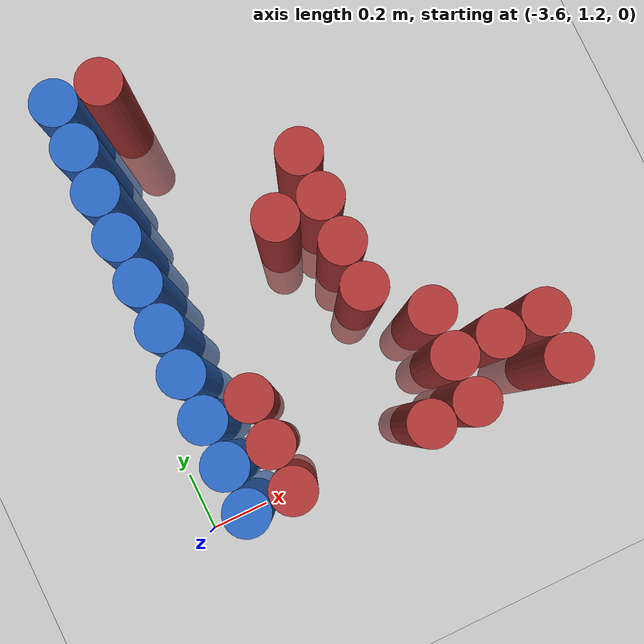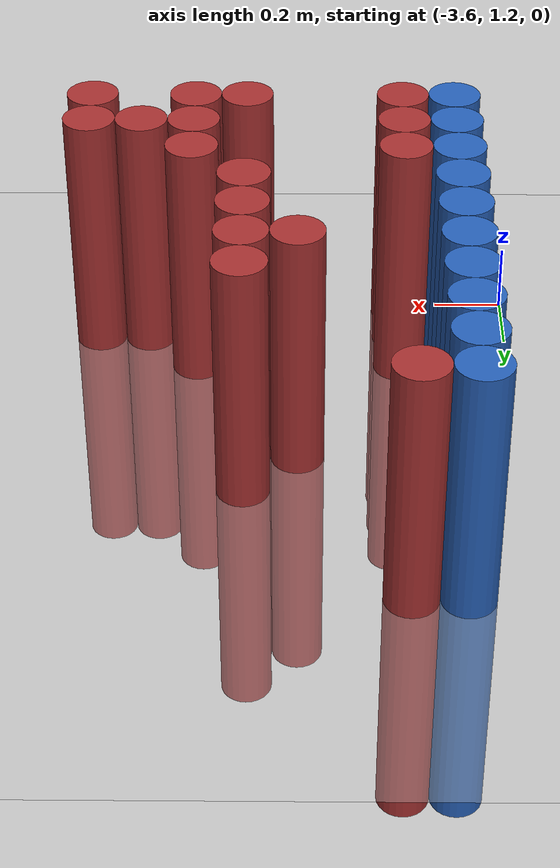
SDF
<sdf version="1.6">
 <world name="default">
  <model name="ground_plane">
   <static>1</static>
   <link name="link">
    <collision name="collision">
     <geometry><plane><normal>0 0 1</normal><size>100 100</size></plane></geometry>
     <surface><friction><ode><mu>100</mu><mu2>50</mu2></ode></friction></surface>
    </collision>
    <visual name="visual">
     <cast_shadows>0</cast_shadows>
     <geometry><plane><normal>0 0 1</normal><size>100 100</size></plane></geometry>
     <material>
      <script><uri>file://media/materials/scripts/gazebo.material</uri><name>Gazebo/Grey</name></script>
     </material>
    </visual>
   </link>
  </model>
  <model name="unit_cylinder_131">
   <static>1</static>
   <pose>-3.425000 1.225000 0.000000 0.000000 0.000000 0.000000</pose>
   <link name="link">
    <inertial>
     <mass>1</mass>
     <inertia><ixx>0.145833</ixx><ixy>0</ixy><ixz>0</ixz><iyy>0.145833</iyy><iyz>0</iyz><izz>0.125</izz></inertia>
    </inertial>
    <collision name="collision">
     <geometry><cylinder><radius>0.075000</radius><length>1.5</length></cylinder></geometry>
    </collision>
    <visual name="visual">
     <geometry><cylinder><radius>0.075000</radius><length>1.5</length></cylinder></geometry>
     <material>
      <ambient>0.152000 0.379000 0.720000 1</ambient>
      <diffuse>0.152000 0.379000 0.720000 1</diffuse>
     </material>
     <material>
      <script><name>Gazebo/Grey</name><uri>file://media/materials/scripts/gazebo.material</uri></script>
     </material>
    </visual>
   </link>
  </model>
  <model name="unit_cylinder_133">
   <static>1</static>
   <pose>-3.425000 1.375000 0.000000 0.000000 0.000000 0.000000</pose>
   <link name="link">
    <inertial>
     <mass>1</mass>
     <inertia><ixx>0.145833</ixx><ixy>0</ixy><ixz>0</ixz><iyy>0.145833</iyy><iyz>0</iyz><izz>0.125</izz></inertia>
    </inertial>
    <collision name="collision">
     <geometry><cylinder><radius>0.075000</radius><length>1.5</length></cylinder></geometry>
    </collision>
    <visual name="visual">
     <geometry><cylinder><radius>0.075000</radius><length>1.5</length></cylinder></geometry>
     <material>
      <ambient>0.152000 0.379000 0.720000 1</ambient>
      <diffuse>0.152000 0.379000 0.720000 1</diffuse>
     </material>
     <material>
      <script><name>Gazebo/Grey</name><uri>file://media/materials/scripts/gazebo.material</uri></script>
     </material>
    </visual>
   </link>
  </model>
  <model name="unit_cylinder_135">
   <static>1</static>
   <pose>-3.425000 1.525000 0.000000 0.000000 0.000000 0.000000</pose>
   <link name="link">
    <inertial>
     <mass>1</mass>
     <inertia><ixx>0.145833</ixx><ixy>0</ixy><ixz>0</ixz><iyy>0.145833</iyy><iyz>0</iyz><izz>0.125</izz></inertia>
    </inertial>
    <collision name="collision">
     <geometry><cylinder><radius>0.075000</radius><length>1.5</length></cylinder></geometry>
    </collision>
    <visual name="visual">
     <geometry><cylinder><radius>0.075000</radius><length>1.5</length></cylinder></geometry>
     <material>
      <ambient>0.152000 0.379000 0.720000 1</ambient>
      <diffuse>0.152000 0.379000 0.720000 1</diffuse>
     </material>
     <material>
      <script><name>Gazebo/Grey</name><uri>file://media/materials/scripts/gazebo.material</uri></script>
     </material>
    </visual>
   </link>
  </model>
  <model name="unit_cylinder_137">
   <static>1</static>
   <pose>-3.425000 1.675000 0.000000 0.000000 0.000000 0.000000</pose>
   <link name="link">
    <inertial>
     <mass>1</mass>
     <inertia><ixx>0.145833</ixx><ixy>0</ixy><ixz>0</ixz><iyy>0.145833</iyy><iyz>0</iyz><izz>0.125</izz></inertia>
    </inertial>
    <collision name="collision">
     <geometry><cylinder><radius>0.075000</radius><length>1.5</length></cylinder></geometry>
    </collision>
    <visual name="visual">
     <geometry><cylinder><radius>0.075000</radius><length>1.5</length></cylinder></geometry>
     <material>
      <ambient>0.152000 0.379000 0.720000 1</ambient>
      <diffuse>0.152000 0.379000 0.720000 1</diffuse>
     </material>
     <material>
      <script><name>Gazebo/Grey</name><uri>file://media/materials/scripts/gazebo.material</uri></script>
     </material>
    </visual>
   </link>
  </model>
  <model name="unit_cylinder_139">
   <static>1</static>
   <pose>-3.425000 1.825000 0.000000 0.000000 0.000000 0.000000</pose>
   <link name="link">
    <inertial>
     <mass>1</mass>
     <inertia><ixx>0.145833</ixx><ixy>0</ixy><ixz>0</ixz><iyy>0.145833</iyy><iyz>0</iyz><izz>0.125</izz></inertia>
    </inertial>
    <collision name="collision">
     <geometry><cylinder><radius>0.075000</radius><length>1.5</length></cylinder></geometry>
    </collision>
    <visual name="visual">
     <geometry><cylinder><radius>0.075000</radius><length>1.5</length></cylinder></geometry>
     <material>
      <ambient>0.152000 0.379000 0.720000 1</ambient>
      <diffuse>0.152000 0.379000 0.720000 1</diffuse>
     </material>
     <material>
      <script><name>Gazebo/Grey</name><uri>file://media/materials/scripts/gazebo.material</uri></script>
     </material>
    </visual>
   </link>
  </model>
  <model name="unit_cylinder_141">
   <static>1</static>
   <pose>-3.425000 1.975000 0.000000 0.000000 0.000000 0.000000</pose>
   <link name="link">
    <inertial>
     <mass>1</mass>
     <inertia><ixx>0.145833</ixx><ixy>0</ixy><ixz>0</ixz><iyy>0.145833</iyy><iyz>0</iyz><izz>0.125</izz></inertia>
    </inertial>
    <collision name="collision">
     <geometry><cylinder><radius>0.075000</radius><length>1.5</length></cylinder></geometry>
    </collision>
    <visual name="visual">
     <geometry><cylinder><radius>0.075000</radius><length>1.5</length></cylinder></geometry>
     <material>
      <ambient>0.152000 0.379000 0.720000 1</ambient>
      <diffuse>0.152000 0.379000 0.720000 1</diffuse>
     </material>
     <material>
      <script><name>Gazebo/Grey</name><uri>file://media/materials/scripts/gazebo.material</uri></script>
     </material>
    </visual>
   </link>
  </model>
  <model name="unit_cylinder_143">
   <static>1</static>
   <pose>-3.425000 2.125000 0.000000 0.000000 0.000000 0.000000</pose>
   <link name="link">
    <inertial>
     <mass>1</mass>
     <inertia><ixx>0.145833</ixx><ixy>0</ixy><ixz>0</ixz><iyy>0.145833</iyy><iyz>0</iyz><izz>0.125</izz></inertia>
    </inertial>
    <collision name="collision">
     <geometry><cylinder><radius>0.075000</radius><length>1.5</length></cylinder></geometry>
    </collision>
    <visual name="visual">
     <geometry><cylinder><radius>0.075000</radius><length>1.5</length></cylinder></geometry>
     <material>
      <ambient>0.152000 0.379000 0.720000 1</ambient>
      <diffuse>0.152000 0.379000 0.720000 1</diffuse>
     </material>
     <material>
      <script><name>Gazebo/Grey</name><uri>file://media/materials/scripts/gazebo.material</uri></script>
     </material>
    </visual>
   </link>
  </model>
  <model name="unit_cylinder_145">
   <static>1</static>
   <pose>-3.425000 2.275000 0.000000 0.000000 0.000000 0.000000</pose>
   <link name="link">
    <inertial>
     <mass>1</mass>
     <inertia><ixx>0.145833</ixx><ixy>0</ixy><ixz>0</ixz><iyy>0.145833</iyy><iyz>0</iyz><izz>0.125</izz></inertia>
    </inertial>
    <collision name="collision">
     <geometry><cylinder><radius>0.075000</radius><length>1.5</length></cylinder></geometry>
    </collision>
    <visual name="visual">
     <geometry><cylinder><radius>0.075000</radius><length>1.5</length></cylinder></geometry>
     <material>
      <ambient>0.152000 0.379000 0.720000 1</ambient>
      <diffuse>0.152000 0.379000 0.720000 1</diffuse>
     </material>
     <material>
      <script><name>Gazebo/Grey</name><uri>file://media/materials/scripts/gazebo.material</uri></script>
     </material>
    </visual>
   </link>
  </model>
  <model name="unit_cylinder_147">
   <static>1</static>
   <pose>-3.425000 2.425000 0.000000 0.000000 0.000000 0.000000</pose>
   <link name="link">
    <inertial>
     <mass>1</mass>
     <inertia><ixx>0.145833</ixx><ixy>0</ixy><ixz>0</ixz><iyy>0.145833</iyy><iyz>0</iyz><izz>0.125</izz></inertia>
    </inertial>
    <collision name="collision">
     <geometry><cylinder><radius>0.075000</radius><length>1.5</length></cylinder></geometry>
    </collision>
    <visual name="visual">
     <geometry><cylinder><radius>0.075000</radius><length>1.5</length></cylinder></geometry>
     <material>
      <ambient>0.152000 0.379000 0.720000 1</ambient>
      <diffuse>0.152000 0.379000 0.720000 1</diffuse>
     </material>
     <material>
      <script><name>Gazebo/Grey</name><uri>file://media/materials/scripts/gazebo.material</uri></script>
     </material>
    </visual>
   </link>
  </model>
  <model name="unit_cylinder_149">
   <static>1</static>
   <pose>-3.425000 2.575000 0.000000 0.000000 0.000000 0.000000</pose>
   <link name="link">
    <inertial>
     <mass>1</mass>
     <inertia><ixx>0.145833</ixx><ixy>0</ixy><ixz>0</ixz><iyy>0.145833</iyy><iyz>0</iyz><izz>0.125</izz></inertia>
    </inertial>
    <collision name="collision">
     <geometry><cylinder><radius>0.075000</radius><length>1.5</length></cylinder></geometry>
    </collision>
    <visual name="visual">
     <geometry><cylinder><radius>0.075000</radius><length>1.5</length></cylinder></geometry>
     <material>
      <ambient>0.152000 0.379000 0.720000 1</ambient>
      <diffuse>0.152000 0.379000 0.720000 1</diffuse>
     </material>
     <material>
      <script><name>Gazebo/Grey</name><uri>file://media/materials/scripts/gazebo.material</uri></script>
     </material>
    </visual>
   </link>
  </model>
  <model name="unit_cylinder_229">
   <static>1</static>
   <pose>-3.425000 1.225000 0.000000 0.000000 0.000000 0.000000</pose>
   <link name="link">
    <inertial>
     <mass>1</mass>
     <inertia><ixx>0.145833</ixx><ixy>0</ixy><ixz>0</ixz><iyy>0.145833</iyy><iyz>0</iyz><izz>0.125</izz></inertia>
    </inertial>
    <collision name="collision">
     <geometry><cylinder><radius>0.075000</radius><length>1.5</length></cylinder></geometry>
    </collision>
    <visual name="visual">
     <geometry><cylinder><radius>0.075000</radius><length>1.5</length></cylinder></geometry>
     <material>
      <ambient>0.152000 0.379000 0.720000 1</ambient>
      <diffuse>0.152000 0.379000 0.720000 1</diffuse>
     </material>
     <material>
      <script><name>Gazebo/Grey</name><uri>file://media/materials/scripts/gazebo.material</uri></script>
     </material>
    </visual>
   </link>
  </model>
  <model name="unit_cylinder_230">
   <static>1</static>
   <pose>-3.425000 1.375000 0.000000 0.000000 0.000000 0.000000</pose>
   <link name="link">
    <inertial>
     <mass>1</mass>
     <inertia><ixx>0.145833</ixx><ixy>0</ixy><ixz>0</ixz><iyy>0.145833</iyy><iyz>0</iyz><izz>0.125</izz></inertia>
    </inertial>
    <collision name="collision">
     <geometry><cylinder><radius>0.075000</radius><length>1.5</length></cylinder></geometry>
    </collision>
    <visual name="visual">
     <geometry><cylinder><radius>0.075000</radius><length>1.5</length></cylinder></geometry>
     <material>
      <ambient>0.152000 0.379000 0.720000 1</ambient>
      <diffuse>0.152000 0.379000 0.720000 1</diffuse>
     </material>
     <material>
      <script><name>Gazebo/Grey</name><uri>file://media/materials/scripts/gazebo.material</uri></script>
     </material>
    </visual>
   </link>
  </model>
  <model name="unit_cylinder_231">
   <static>1</static>
   <pose>-3.425000 1.525000 0.000000 0.000000 0.000000 0.000000</pose>
   <link name="link">
    <inertial>
     <mass>1</mass>
     <inertia><ixx>0.145833</ixx><ixy>0</ixy><ixz>0</ixz><iyy>0.145833</iyy><iyz>0</iyz><izz>0.125</izz></inertia>
    </inertial>
    <collision name="collision">
     <geometry><cylinder><radius>0.075000</radius><length>1.5</length></cylinder></geometry>
    </collision>
    <visual name="visual">
     <geometry><cylinder><radius>0.075000</radius><length>1.5</length></cylinder></geometry>
     <material>
      <ambient>0.152000 0.379000 0.720000 1</ambient>
      <diffuse>0.152000 0.379000 0.720000 1</diffuse>
     </material>
     <material>
      <script><name>Gazebo/Grey</name><uri>file://media/materials/scripts/gazebo.material</uri></script>
     </material>
    </visual>
   </link>
  </model>
  <model name="unit_cylinder_232">
   <static>1</static>
   <pose>-3.425000 1.675000 0.000000 0.000000 0.000000 0.000000</pose>
   <link name="link">
    <inertial>
     <mass>1</mass>
     <inertia><ixx>0.145833</ixx><ixy>0</ixy><ixz>0</ixz><iyy>0.145833</iyy><iyz>0</iyz><izz>0.125</izz></inertia>
    </inertial>
    <collision name="collision">
     <geometry><cylinder><radius>0.075000</radius><length>1.5</length></cylinder></geometry>
    </collision>
    <visual name="visual">
     <geometry><cylinder><radius>0.075000</radius><length>1.5</length></cylinder></geometry>
     <material>
      <ambient>0.152000 0.379000 0.720000 1</ambient>
      <diffuse>0.152000 0.379000 0.720000 1</diffuse>
     </material>
     <material>
      <script><name>Gazebo/Grey</name><uri>file://media/materials/scripts/gazebo.material</uri></script>
     </material>
    </visual>
   </link>
  </model>
  <model name="unit_cylinder_233">
   <static>1</static>
   <pose>-3.425000 1.825000 0.000000 0.000000 0.000000 0.000000</pose>
   <link name="link">
    <inertial>
     <mass>1</mass>
     <inertia><ixx>0.145833</ixx><ixy>0</ixy><ixz>0</ixz><iyy>0.145833</iyy><iyz>0</iyz><izz>0.125</izz></inertia>
    </inertial>
    <collision name="collision">
     <geometry><cylinder><radius>0.075000</radius><length>1.5</length></cylinder></geometry>
    </collision>
    <visual name="visual">
     <geometry><cylinder><radius>0.075000</radius><length>1.5</length></cylinder></geometry>
     <material>
      <ambient>0.152000 0.379000 0.720000 1</ambient>
      <diffuse>0.152000 0.379000 0.720000 1</diffuse>
     </material>
     <material>
      <script><name>Gazebo/Grey</name><uri>file://media/materials/scripts/gazebo.material</uri></script>
     </material>
    </visual>
   </link>
  </model>
  <model name="unit_cylinder_234">
   <static>1</static>
   <pose>-3.425000 1.975000 0.000000 0.000000 0.000000 0.000000</pose>
   <link name="link">
    <inertial>
     <mass>1</mass>
     <inertia><ixx>0.145833</ixx><ixy>0</ixy><ixz>0</ixz><iyy>0.145833</iyy><iyz>0</iyz><izz>0.125</izz></inertia>
    </inertial>
    <collision name="collision">
     <geometry><cylinder><radius>0.075000</radius><length>1.5</length></cylinder></geometry>
    </collision>
    <visual name="visual">
     <geometry><cylinder><radius>0.075000</radius><length>1.5</length></cylinder></geometry>
     <material>
      <ambient>0.152000 0.379000 0.720000 1</ambient>
      <diffuse>0.152000 0.379000 0.720000 1</diffuse>
     </material>
     <material>
      <script><name>Gazebo/Grey</name><uri>file://media/materials/scripts/gazebo.material</uri></script>
     </material>
    </visual>
   </link>
  </model>
  <model name="unit_cylinder_235">
   <static>1</static>
   <pose>-3.425000 2.125000 0.000000 0.000000 0.000000 0.000000</pose>
   <link name="link">
    <inertial>
     <mass>1</mass>
     <inertia><ixx>0.145833</ixx><ixy>0</ixy><ixz>0</ixz><iyy>0.145833</iyy><iyz>0</iyz><izz>0.125</izz></inertia>
    </inertial>
    <collision name="collision">
     <geometry><cylinder><radius>0.075000</radius><length>1.5</length></cylinder></geometry>
    </collision>
    <visual name="visual">
     <geometry><cylinder><radius>0.075000</radius><length>1.5</length></cylinder></geometry>
     <material>
      <ambient>0.152000 0.379000 0.720000 1</ambient>
      <diffuse>0.152000 0.379000 0.720000 1</diffuse>
     </material>
     <material>
      <script><name>Gazebo/Grey</name><uri>file://media/materials/scripts/gazebo.material</uri></script>
     </material>
    </visual>
   </link>
  </model>
  <model name="unit_cylinder_236">
   <static>1</static>
   <pose>-3.425000 2.275000 0.000000 0.000000 0.000000 0.000000</pose>
   <link name="link">
    <inertial>
     <mass>1</mass>
     <inertia><ixx>0.145833</ixx><ixy>0</ixy><ixz>0</ixz><iyy>0.145833</iyy><iyz>0</iyz><izz>0.125</izz></inertia>
    </inertial>
    <collision name="collision">
     <geometry><cylinder><radius>0.075000</radius><length>1.5</length></cylinder></geometry>
    </collision>
    <visual name="visual">
     <geometry><cylinder><radius>0.075000</radius><length>1.5</length></cylinder></geometry>
     <material>
      <ambient>0.152000 0.379000 0.720000 1</ambient>
      <diffuse>0.152000 0.379000 0.720000 1</diffuse>
     </material>
     <material>
      <script><name>Gazebo/Grey</name><uri>file://media/materials/scripts/gazebo.material</uri></script>
     </material>
    </visual>
   </link>
  </model>
  <model name="unit_cylinder_237">
   <static>1</static>
   <pose>-3.425000 2.425000 0.000000 0.000000 0.000000 0.000000</pose>
   <link name="link">
    <inertial>
     <mass>1</mass>
     <inertia><ixx>0.145833</ixx><ixy>0</ixy><ixz>0</ixz><iyy>0.145833</iyy><iyz>0</iyz><izz>0.125</izz></inertia>
    </inertial>
    <collision name="collision">
     <geometry><cylinder><radius>0.075000</radius><length>1.5</length></cylinder></geometry>
    </collision>
    <visual name="visual">
     <geometry><cylinder><radius>0.075000</radius><length>1.5</length></cylinder></geometry>
     <material>
      <ambient>0.152000 0.379000 0.720000 1</ambient>
      <diffuse>0.152000 0.379000 0.720000 1</diffuse>
     </material>
     <material>
      <script><name>Gazebo/Grey</name><uri>file://media/materials/scripts/gazebo.material</uri></script>
     </material>
    </visual>
   </link>
  </model>
  <model name="unit_cylinder_238">
   <static>1</static>
   <pose>-3.425000 2.575000 0.000000 0.000000 0.000000 0.000000</pose>
   <link name="link">
    <inertial>
     <mass>1</mass>
     <inertia><ixx>0.145833</ixx><ixy>0</ixy><ixz>0</ixz><iyy>0.145833</iyy><iyz>0</iyz><izz>0.125</izz></inertia>
    </inertial>
    <collision name="collision">
     <geometry><cylinder><radius>0.075000</radius><length>1.5</length></cylinder></geometry>
    </collision>
    <visual name="visual">
     <geometry><cylinder><radius>0.075000</radius><length>1.5</length></cylinder></geometry>
     <material>
      <ambient>0.152000 0.379000 0.720000 1</ambient>
      <diffuse>0.152000 0.379000 0.720000 1</diffuse>
     </material>
     <material>
      <script><name>Gazebo/Grey</name><uri>file://media/materials/scripts/gazebo.material</uri></script>
     </material>
    </visual>
   </link>
  </model>
  <model name="unit_cylinder_262">
   <static>1</static>
   <pose>-3.275000 1.225000 0.000000 0.000000 0.000000 0.000000</pose>
   <link name="link">
    <inertial>
     <mass>1</mass>
     <inertia><ixx>0.145833</ixx><ixy>0</ixy><ixz>0</ixz><iyy>0.145833</iyy><iyz>0</iyz><izz>0.125</izz></inertia>
    </inertial>
    <collision name="collision">
     <geometry><cylinder><radius>0.075000</radius><length>1.5</length></cylinder></geometry>
    </collision>
    <visual name="visual">
     <geometry><cylinder><radius>0.075000</radius><length>1.5</length></cylinder></geometry>
     <material>
      <ambient>0.648000 0.192000 0.192000 1</ambient>
      <diffuse>0.648000 0.192000 0.192000 1</diffuse>
     </material>
     <material>
      <script><name>Gazebo/Grey</name><uri>file://media/materials/scripts/gazebo.material</uri></script>
     </material>
    </visual>
   </link>
  </model>
  <model name="unit_cylinder_263">
   <static>1</static>
   <pose>-3.275000 1.375000 0.000000 0.000000 0.000000 0.000000</pose>
   <link name="link">
    <inertial>
     <mass>1</mass>
     <inertia><ixx>0.145833</ixx><ixy>0</ixy><ixz>0</ixz><iyy>0.145833</iyy><iyz>0</iyz><izz>0.125</izz></inertia>
    </inertial>
    <collision name="collision">
     <geometry><cylinder><radius>0.075000</radius><length>1.5</length></cylinder></geometry>
    </collision>
    <visual name="visual">
     <geometry><cylinder><radius>0.075000</radius><length>1.5</length></cylinder></geometry>
     <material>
      <ambient>0.648000 0.192000 0.192000 1</ambient>
      <diffuse>0.648000 0.192000 0.192000 1</diffuse>
     </material>
     <material>
      <script><name>Gazebo/Grey</name><uri>file://media/materials/scripts/gazebo.material</uri></script>
     </material>
    </visual>
   </link>
  </model>
  <model name="unit_cylinder_264">
   <static>1</static>
   <pose>-3.275000 1.525000 0.000000 0.000000 0.000000 0.000000</pose>
   <link name="link">
    <inertial>
     <mass>1</mass>
     <inertia><ixx>0.145833</ixx><ixy>0</ixy><ixz>0</ixz><iyy>0.145833</iyy><iyz>0</iyz><izz>0.125</izz></inertia>
    </inertial>
    <collision name="collision">
     <geometry><cylinder><radius>0.075000</radius><length>1.5</length></cylinder></geometry>
    </collision>
    <visual name="visual">
     <geometry><cylinder><radius>0.075000</radius><length>1.5</length></cylinder></geometry>
     <material>
      <ambient>0.648000 0.192000 0.192000 1</ambient>
      <diffuse>0.648000 0.192000 0.192000 1</diffuse>
     </material>
     <material>
      <script><name>Gazebo/Grey</name><uri>file://media/materials/scripts/gazebo.material</uri></script>
     </material>
    </visual>
   </link>
  </model>
  <model name="unit_cylinder_265">
   <static>1</static>
   <pose>-3.275000 2.575000 0.000000 0.000000 0.000000 0.000000</pose>
   <link name="link">
    <inertial>
     <mass>1</mass>
     <inertia><ixx>0.145833</ixx><ixy>0</ixy><ixz>0</ixz><iyy>0.145833</iyy><iyz>0</iyz><izz>0.125</izz></inertia>
    </inertial>
    <collision name="collision">
     <geometry><cylinder><radius>0.075000</radius><length>1.5</length></cylinder></geometry>
    </collision>
    <visual name="visual">
     <geometry><cylinder><radius>0.075000</radius><length>1.5</length></cylinder></geometry>
     <material>
      <ambient>0.648000 0.192000 0.192000 1</ambient>
      <diffuse>0.648000 0.192000 0.192000 1</diffuse>
     </material>
     <material>
      <script><name>Gazebo/Grey</name><uri>file://media/materials/scripts/gazebo.material</uri></script>
     </material>
    </visual>
   </link>
  </model>
  <model name="unit_cylinder_275">
   <static>1</static>
   <pose>-2.975000 1.975000 0.000000 0.000000 0.000000 0.000000</pose>
   <link name="link">
    <inertial>
     <mass>1</mass>
     <inertia><ixx>0.145833</ixx><ixy>0</ixy><ixz>0</ixz><iyy>0.145833</iyy><iyz>0</iyz><izz>0.125</izz></inertia>
    </inertial>
    <collision name="collision">
     <geometry><cylinder><radius>0.075000</radius><length>1.5</length></cylinder></geometry>
    </collision>
    <visual name="visual">
     <geometry><cylinder><radius>0.075000</radius><length>1.5</length></cylinder></geometry>
     <material>
      <ambient>0.648000 0.192000 0.192000 1</ambient>
      <diffuse>0.648000 0.192000 0.192000 1</diffuse>
     </material>
     <material>
      <script><name>Gazebo/Grey</name><uri>file://media/materials/scripts/gazebo.material</uri></script>
     </material>
    </visual>
   </link>
  </model>
  <model name="unit_cylinder_280">
   <static>1</static>
   <pose>-2.825000 1.225000 0.000000 0.000000 0.000000 0.000000</pose>
   <link name="link">
    <inertial>
     <mass>1</mass>
     <inertia><ixx>0.145833</ixx><ixy>0</ixy><ixz>0</ixz><iyy>0.145833</iyy><iyz>0</iyz><izz>0.125</izz></inertia>
    </inertial>
    <collision name="collision">
     <geometry><cylinder><radius>0.075000</radius><length>1.5</length></cylinder></geometry>
    </collision>
    <visual name="visual">
     <geometry><cylinder><radius>0.075000</radius><length>1.5</length></cylinder></geometry>
     <material>
      <ambient>0.648000 0.192000 0.192000 1</ambient>
      <diffuse>0.648000 0.192000 0.192000 1</diffuse>
     </material>
     <material>
      <script><name>Gazebo/Grey</name><uri>file://media/materials/scripts/gazebo.material</uri></script>
     </material>
    </visual>
   </link>
  </model>
  <model name="unit_cylinder_281">
   <static>1</static>
   <pose>-2.825000 1.675000 0.000000 0.000000 0.000000 0.000000</pose>
   <link name="link">
    <inertial>
     <mass>1</mass>
     <inertia><ixx>0.145833</ixx><ixy>0</ixy><ixz>0</ixz><iyy>0.145833</iyy><iyz>0</iyz><izz>0.125</izz></inertia>
    </inertial>
    <collision name="collision">
     <geometry><cylinder><radius>0.075000</radius><length>1.5</length></cylinder></geometry>
    </collision>
    <visual name="visual">
     <geometry><cylinder><radius>0.075000</radius><length>1.5</length></cylinder></geometry>
     <material>
      <ambient>0.648000 0.192000 0.192000 1</ambient>
      <diffuse>0.648000 0.192000 0.192000 1</diffuse>
     </material>
     <material>
      <script><name>Gazebo/Grey</name><uri>file://media/materials/scripts/gazebo.material</uri></script>
     </material>
    </visual>
   </link>
  </model>
  <model name="unit_cylinder_282">
   <static>1</static>
   <pose>-2.825000 1.825000 0.000000 0.000000 0.000000 0.000000</pose>
   <link name="link">
    <inertial>
     <mass>1</mass>
     <inertia><ixx>0.145833</ixx><ixy>0</ixy><ixz>0</ixz><iyy>0.145833</iyy><iyz>0</iyz><izz>0.125</izz></inertia>
    </inertial>
    <collision name="collision">
     <geometry><cylinder><radius>0.075000</radius><length>1.5</length></cylinder></geometry>
    </collision>
    <visual name="visual">
     <geometry><cylinder><radius>0.075000</radius><length>1.5</length></cylinder></geometry>
     <material>
      <ambient>0.648000 0.192000 0.192000 1</ambient>
      <diffuse>0.648000 0.192000 0.192000 1</diffuse>
     </material>
     <material>
      <script><name>Gazebo/Grey</name><uri>file://media/materials/scripts/gazebo.material</uri></script>
     </material>
    </visual>
   </link>
  </model>
  <model name="unit_cylinder_283">
   <static>1</static>
   <pose>-2.825000 1.975000 0.000000 0.000000 0.000000 0.000000</pose>
   <link name="link">
    <inertial>
     <mass>1</mass>
     <inertia><ixx>0.145833</ixx><ixy>0</ixy><ixz>0</ixz><iyy>0.145833</iyy><iyz>0</iyz><izz>0.125</izz></inertia>
    </inertial>
    <collision name="collision">
     <geometry><cylinder><radius>0.075000</radius><length>1.5</length></cylinder></geometry>
    </collision>
    <visual name="visual">
     <geometry><cylinder><radius>0.075000</radius><length>1.5</length></cylinder></geometry>
     <material>
      <ambient>0.648000 0.192000 0.192000 1</ambient>
      <diffuse>0.648000 0.192000 0.192000 1</diffuse>
     </material>
     <material>
      <script><name>Gazebo/Grey</name><uri>file://media/materials/scripts/gazebo.material</uri></script>
     </material>
    </visual>
   </link>
  </model>
  <model name="unit_cylinder_284">
   <static>1</static>
   <pose>-2.825000 2.125000 0.000000 0.000000 0.000000 0.000000</pose>
   <link name="link">
    <inertial>
     <mass>1</mass>
     <inertia><ixx>0.145833</ixx><ixy>0</ixy><ixz>0</ixz><iyy>0.145833</iyy><iyz>0</iyz><izz>0.125</izz></inertia>
    </inertial>
    <collision name="collision">
     <geometry><cylinder><radius>0.075000</radius><length>1.5</length></cylinder></geometry>
    </collision>
    <visual name="visual">
     <geometry><cylinder><radius>0.075000</radius><length>1.5</length></cylinder></geometry>
     <material>
      <ambient>0.648000 0.192000 0.192000 1</ambient>
      <diffuse>0.648000 0.192000 0.192000 1</diffuse>
     </material>
     <material>
      <script><name>Gazebo/Grey</name><uri>file://media/materials/scripts/gazebo.material</uri></script>
     </material>
    </visual>
   </link>
  </model>
  <model name="unit_cylinder_292">
   <static>1</static>
   <pose>-2.675000 1.225000 0.000000 0.000000 0.000000 0.000000</pose>
   <link name="link">
    <inertial>
     <mass>1</mass>
     <inertia><ixx>0.145833</ixx><ixy>0</ixy><ixz>0</ixz><iyy>0.145833</iyy><iyz>0</iyz><izz>0.125</izz></inertia>
    </inertial>
    <collision name="collision">
     <geometry><cylinder><radius>0.075000</radius><length>1.5</length></cylinder></geometry>
    </collision>
    <visual name="visual">
     <geometry><cylinder><radius>0.075000</radius><length>1.5</length></cylinder></geometry>
     <material>
      <ambient>0.648000 0.192000 0.192000 1</ambient>
      <diffuse>0.648000 0.192000 0.192000 1</diffuse>
     </material>
     <material>
      <script><name>Gazebo/Grey</name><uri>file://media/materials/scripts/gazebo.material</uri></script>
     </material>
    </visual>
   </link>
  </model>
  <model name="unit_cylinder_293">
   <static>1</static>
   <pose>-2.675000 1.375000 0.000000 0.000000 0.000000 0.000000</pose>
   <link name="link">
    <inertial>
     <mass>1</mass>
     <inertia><ixx>0.145833</ixx><ixy>0</ixy><ixz>0</ixz><iyy>0.145833</iyy><iyz>0</iyz><izz>0.125</izz></inertia>
    </inertial>
    <collision name="collision">
     <geometry><cylinder><radius>0.075000</radius><length>1.5</length></cylinder></geometry>
    </collision>
    <visual name="visual">
     <geometry><cylinder><radius>0.075000</radius><length>1.5</length></cylinder></geometry>
     <material>
      <ambient>0.648000 0.192000 0.192000 1</ambient>
      <diffuse>0.648000 0.192000 0.192000 1</diffuse>
     </material>
     <material>
      <script><name>Gazebo/Grey</name><uri>file://media/materials/scripts/gazebo.material</uri></script>
     </material>
    </visual>
   </link>
  </model>
  <model name="unit_cylinder_294">
   <static>1</static>
   <pose>-2.675000 1.525000 0.000000 0.000000 0.000000 0.000000</pose>
   <link name="link">
    <inertial>
     <mass>1</mass>
     <inertia><ixx>0.145833</ixx><ixy>0</ixy><ixz>0</ixz><iyy>0.145833</iyy><iyz>0</iyz><izz>0.125</izz></inertia>
    </inertial>
    <collision name="collision">
     <geometry><cylinder><radius>0.075000</radius><length>1.5</length></cylinder></geometry>
    </collision>
    <visual name="visual">
     <geometry><cylinder><radius>0.075000</radius><length>1.5</length></cylinder></geometry>
     <material>
      <ambient>0.648000 0.192000 0.192000 1</ambient>
      <diffuse>0.648000 0.192000 0.192000 1</diffuse>
     </material>
     <material>
      <script><name>Gazebo/Grey</name><uri>file://media/materials/scripts/gazebo.material</uri></script>
     </material>
    </visual>
   </link>
  </model>
  <model name="unit_cylinder_302">
   <static>1</static>
   <pose>-2.525000 1.375000 0.000000 0.000000 0.000000 0.000000</pose>
   <link name="link">
    <inertial>
     <mass>1</mass>
     <inertia><ixx>0.145833</ixx><ixy>0</ixy><ixz>0</ixz><iyy>0.145833</iyy><iyz>0</iyz><izz>0.125</izz></inertia>
    </inertial>
    <collision name="collision">
     <geometry><cylinder><radius>0.075000</radius><length>1.5</length></cylinder></geometry>
    </collision>
    <visual name="visual">
     <geometry><cylinder><radius>0.075000</radius><length>1.5</length></cylinder></geometry>
     <material>
      <ambient>0.648000 0.192000 0.192000 1</ambient>
      <diffuse>0.648000 0.192000 0.192000 1</diffuse>
     </material>
     <material>
      <script><name>Gazebo/Grey</name><uri>file://media/materials/scripts/gazebo.material</uri></script>
     </material>
    </visual>
   </link>
  </model>
  <model name="unit_cylinder_308">
   <static>1</static>
   <pose>-2.375000 1.225000 0.000000 0.000000 0.000000 0.000000</pose>
   <link name="link">
    <inertial>
     <mass>1</mass>
     <inertia><ixx>0.145833</ixx><ixy>0</ixy><ixz>0</ixz><iyy>0.145833</iyy><iyz>0</iyz><izz>0.125</izz></inertia>
    </inertial>
    <collision name="collision">
     <geometry><cylinder><radius>0.075000</radius><length>1.5</length></cylinder></geometry>
    </collision>
    <visual name="visual">
     <geometry><cylinder><radius>0.075000</radius><length>1.5</length></cylinder></geometry>
     <material>
      <ambient>0.648000 0.192000 0.192000 1</ambient>
      <diffuse>0.648000 0.192000 0.192000 1</diffuse>
     </material>
     <material>
      <script><name>Gazebo/Grey</name><uri>file://media/materials/scripts/gazebo.material</uri></script>
     </material>
    </visual>
   </link>
  </model>
  <model name="unit_cylinder_309">
   <static>1</static>
   <pose>-2.375000 1.375000 0.000000 0.000000 0.000000 0.000000</pose>
   <link name="link">
    <inertial>
     <mass>1</mass>
     <inertia><ixx>0.145833</ixx><ixy>0</ixy><ixz>0</ixz><iyy>0.145833</iyy><iyz>0</iyz><izz>0.125</izz></inertia>
    </inertial>
    <collision name="collision">
     <geometry><cylinder><radius>0.075000</radius><length>1.5</length></cylinder></geometry>
    </collision>
    <visual name="visual">
     <geometry><cylinder><radius>0.075000</radius><length>1.5</length></cylinder></geometry>
     <material>
      <ambient>0.648000 0.192000 0.192000 1</ambient>
      <diffuse>0.648000 0.192000 0.192000 1</diffuse>
     </material>
     <material>
      <script><name>Gazebo/Grey</name><uri>file://media/materials/scripts/gazebo.material</uri></script>
     </material>
    </visual>
   </link>
  </model>
 </world>
</sdf>
